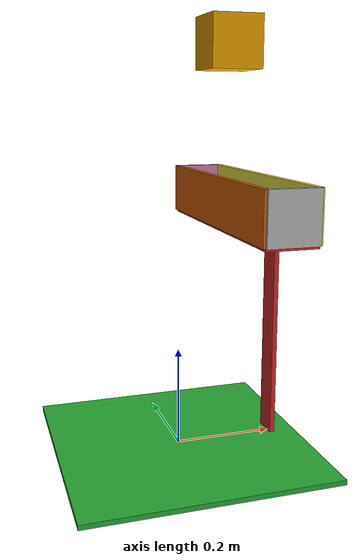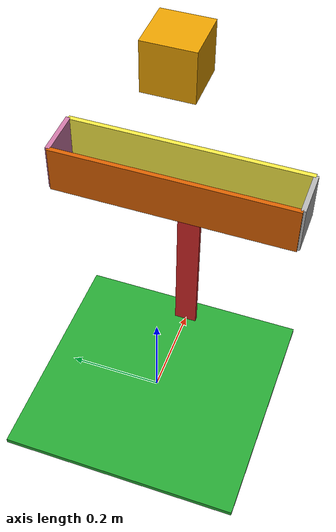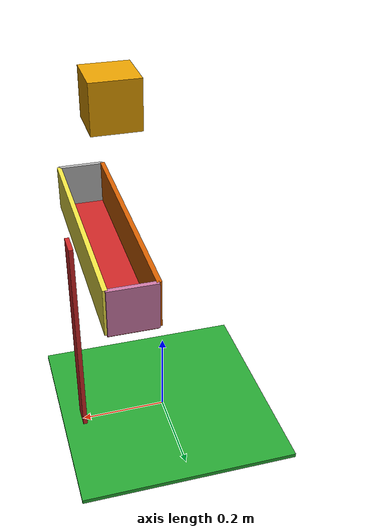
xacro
<?xml version="1.0"?>

<robot name="trough" xmlns:xacro="http://www.ros.org/wiki/xacro">
    <xacro:property name="base_mass" value="50"/>
    <xacro:property name="base_length" value="0.5"/>
    <xacro:property name="base_width" value="0.5"/>
    <xacro:property name="base_height" value="0.01"/>

    <xacro:property name="arm_mass" value="0.500"/>
    <xacro:property name="arm_length" value="0.01"/>
    <xacro:property name="arm_width" value="0.05"/>
    <xacro:property name="arm_height" value="0.5"/>

    <xacro:property name="trough_long_mass" value="0.100"/>
    <xacro:property name="trough_long_length" value="0.5"/>
    <xacro:property name="trough_long_width" value="0.1"/>
    <xacro:property name="trough_long_height" value="0.01"/>

    <xacro:property name="trough_short_mass" value="0.010"/>
    <xacro:property name="trough_short_length" value="0.1"/>
    <xacro:property name="trough_short_width" value="0.1"/>
    <xacro:property name="trough_short_height" value="0.01"/>

    <xacro:property name="camera_mass" value="0.500"/>
    <xacro:property name="camera_length" value="0.10"/>
    <xacro:property name="camera_width" value="0.10"/>
    <xacro:property name="camera_height" value="0.10"/>

    <xacro:include filename="$(find rl_wheel)/urdf/macros.xacro"/>
    <xacro:include filename="$(find rl_wheel)/urdf/materials.xacro"/>

    <!-- Use the world link to fix the platform_base_link to the Gazebo base_link-->
    <link name="world"/>

    <link name="platform_base_link">
        <xacro:box_inertial name="base"
            m="${base_mass}" x="${base_length}" y="${base_width}" z="${base_height}"/>
        <collision name='base_collision'>
            <geometry>
                <box size="${base_length} ${base_width} ${base_height}"/>
            </geometry>
        </collision>
        <visual name='base_visual'>
            <origin xyz="0 0 0" rpy=" 0 0 0"/>
            <geometry>
                <box size="${base_length} ${base_width} ${base_height}"/>
            </geometry>
        </visual>
    </link>

    <link name="arm_link">
        <xacro:box_inertial name="arm"
            m="${arm_mass}" x="${arm_length}" y="${arm_width}" z="${arm_height}"/>
        <collision name='arm_collision'>
            <geometry>
                <box size="${arm_length} ${arm_width} ${arm_height}"/>
            </geometry>
        </collision>
        <visual name='arm_visual'>
            <origin xyz="0 0 0" rpy=" 0 0 0"/>
            <geometry>
                <box size="${arm_length} ${arm_width} ${arm_height}"/>
            </geometry>
        </visual>
    </link>

    <link name="trough_back">
        <xacro:box_inertial name="trough_back"
            m="${trough_long_mass}"
            x="${trough_long_length}" y="${trough_long_width}" z="${trough_long_height}"/>
        <collision name='trough_back_collision'>
            <geometry>
                <box size="${trough_long_length} ${trough_long_width} ${trough_long_height}"/>
            </geometry>
        </collision>
        <visual name='trough_back_visual'>
            <origin xyz="0 0 0" rpy=" 0 0 0"/>
            <geometry>
                <box size="${trough_long_length} ${trough_long_width} ${trough_long_height}"/>
            </geometry>
        </visual>
    </link>

    <link name="trough_floor">
        <xacro:box_inertial name="trough_floor"
            m="${trough_long_mass}"
            x="${trough_long_length}" y="${trough_long_width}" z="${trough_long_height}"/>
        <collision name='trough_floor_collision'>
            <geometry>
                <box size="${trough_long_length} ${trough_long_width} ${trough_long_height}"/>
            </geometry>
        </collision>
        <visual name='trough_floor_visual'>
            <origin xyz="0 0 0" rpy=" 0 0 0"/>
            <geometry>
                <box size="${trough_long_length} ${trough_long_width} ${trough_long_height}"/>
            </geometry>
        </visual>
    </link>

    <link name="trough_front">
        <xacro:box_inertial name="trough_front"
            m="${trough_long_mass}"
            x="${trough_long_length}" y="${trough_long_width}" z="${trough_long_height}"/>
        <collision name='trough_front_collision'>
            <geometry>
                <box size="${trough_long_length} ${trough_long_width} ${trough_long_height}"/>
            </geometry>
        </collision>
        <visual name='trough_front_visual'>
            <origin xyz="0 0 0" rpy=" 0 0 0"/>
            <geometry>
                <box size="${trough_long_length} ${trough_long_width} ${trough_long_height}"/>
            </geometry>
        </visual>
    </link>

    <link name="trough_left">
        <xacro:box_inertial name="trough_left"
            m="${trough_short_mass}"
            x="${trough_short_length}" y="${trough_short_width}" z="${trough_short_height}"/>
        <collision name='trough_left_collision'>
            <geometry>
                <box size="${trough_short_length} ${trough_short_width} ${trough_short_height}"/>
            </geometry>
        </collision>
        <visual name='trough_left_visual'>
            <origin xyz="0 0 0" rpy=" 0 0 0"/>
            <geometry>
                <box size="${trough_short_length} ${trough_short_width} ${trough_short_height}"/>
            </geometry>
        </visual>
    </link>

        <link name="trough_right">
        <xacro:box_inertial name="trough_right"
            m="${trough_short_mass}"
            x="${trough_short_length}" y="${trough_short_width}" z="${trough_short_height}"/>
        <collision name='trough_right_collision'>
            <geometry>
                <box size="${trough_short_length} ${trough_short_width} ${trough_short_height}"/>
            </geometry>
        </collision>
        <visual name='trough_right_visual'>
            <origin xyz="0 0 0" rpy=" 0 0 0"/>
            <geometry>
                <box size="${trough_short_length} ${trough_short_width} ${trough_short_height}"/>
            </geometry>
        </visual>
    </link>

    <link name="camera_link">
        <xacro:box_inertial name="camera"
            m="${camera_mass}" x="${camera_length}" y="${camera_width}" z="${camera_height}"/>

        <visual name="camera_visual">
            <geometry>
                <box size="${camera_width} ${camera_height} ${camera_length}"/>
            </geometry>
        </visual>

        <collision name="camera_collision">
            <geometry>
                <box size="${camera_width} ${camera_height} ${camera_length}"/>
            </geometry>
        </collision>
    </link>

    <!-- *** JOINTS *** -->

    <joint name="fixed" type="fixed">
        <parent link="world"/>
        <child link="platform_base_link"/>
    </joint>

    <joint name="base_arm_joint" type="fixed">
        <parent link="platform_base_link"/>
        <child link="arm_link"/>
        <origin xyz="0.2 0 ${arm_height/2}"
            rpy="0 0 0"/>
    </joint>

    <joint name="arm_trough_back_joint" type="continuous">
        <parent link="arm_link"/>
        <child link="trough_back"/>
        <origin xyz="-${arm_width/2} 0 ${arm_height/2}"
            rpy="-1.57 0 1.57"/>
        <axis xyz="0 0 -1"/>
        <dynamics damping="0.0" friction="0.2"/>
    </joint>

    <joint name="trough_back_floor_joint" type="fixed">
        <parent link="trough_back"/>
        <child link="trough_floor"/>
        <origin xyz="0 ${trough_long_width/2} ${trough_long_width/2}"
            rpy="1.57 0 0"/>
    </joint>

    <joint name="trough_back_front_joint" type="fixed">
        <parent link="trough_back"/>
        <child link="trough_front"/>
        <origin xyz="0 0 ${trough_long_width}"/>
    </joint>

    <joint name="trough_back_left_joint" type="fixed">
        <parent link="trough_back"/>
        <child link="trough_left"/>
        <origin xyz="${trough_long_length/2} 0 ${trough_long_width/2}"
                rpy="0 1.57 0"/>
    </joint>

    <joint name="trough_back_right_joint" type="fixed">
        <parent link="trough_back"/>
        <child link="trough_right"/>
        <origin xyz="${-trough_long_length/2} 0 ${trough_long_width/2}"
                rpy="0 1.57 0"/>
    </joint>

    <joint name="camera_base_joint" type="fixed">
        <parent link="platform_base_link"/>
        <child link="camera_link"/>
        <origin xyz="0.1 0 0.8" rpy="0 1.57 0"/>
    </joint>

    <!-- *** MATERIAL *** -->

    <gazebo reference="platform_base_link">
        <material>Gazebo/Green</material>
    </gazebo>

    <gazebo reference="arm_link">
        <material>Gazebo/Red</material>
    </gazebo>

    <gazebo reference="trough_floor">
        <mu1>10</mu1>
        <mu2>10</mu2>
        <material>Gazebo/Red</material>
    </gazebo>

    <!-- CAMERA PLUGIN -->
    <gazebo reference="camera_link">
        <sensor type="camera" name="camera1">
        <update_rate>30.0</update_rate>
        <camera name="head">
            <horizontal_fov>1.3962634</horizontal_fov>
            <image>
                <width>800</width>
                <height>400</height>
                <format>R8G8B8</format>
            </image>
            <clip>
                <near>0.02</near>
                <far>300</far>
            </clip>
            <noise>
                <type>gaussian</type>
                <mean>0.0</mean>
                <stddev>0.007</stddev>
            </noise>
        </camera>
        <plugin name="camera_controller" filename="libgazebo_ros_camera.so">
            <alwaysOn>true</alwaysOn>
            <updateRate>0.0</updateRate>
            <cameraName>camera1</cameraName>
            <imageTopicName>image_raw</imageTopicName>
            <cameraInfoTopicName>camera_info</cameraInfoTopicName>
            <frameName>camera_link</frameName>
            <hackBaseline>0.07</hackBaseline>
            <distortionK1>0.0</distortionK1>
            <distortionK2>0.0</distortionK2>
            <distortionK3>0.0</distortionK3>
            <distortionT1>0.0</distortionT1>
            <distortionT2>0.0</distortionT2>
        </plugin>
        </sensor>
    </gazebo>

    <!-- TRANSMISSIONS -->
    <transmission name="trough_tran">
        <type>transmission_interface/SimpleTransmission</type>
        <joint name="arm_trough_back_joint">
            <hardwareInterface>
                hardware_interface/EffortJointInterface
            </hardwareInterface>
        </joint>
        <actuator name="motor1">
            <hardwareInterface>
                hardware_interface/EffortJointInterface
            </hardwareInterface>
            <mechanicalReduction>1</mechanicalReduction>
        </actuator>
    </transmission>

    <gazebo>
        <plugin name="gazebo_ros_control" filename="libgazebo_ros_control.so">
            <robotNamespace>/trough_bot</robotNamespace>
            <robotSimType>gazebo_ros_control/DefaultRobotHWSim</robotSimType>
        </plugin>
    </gazebo>

</robot>
